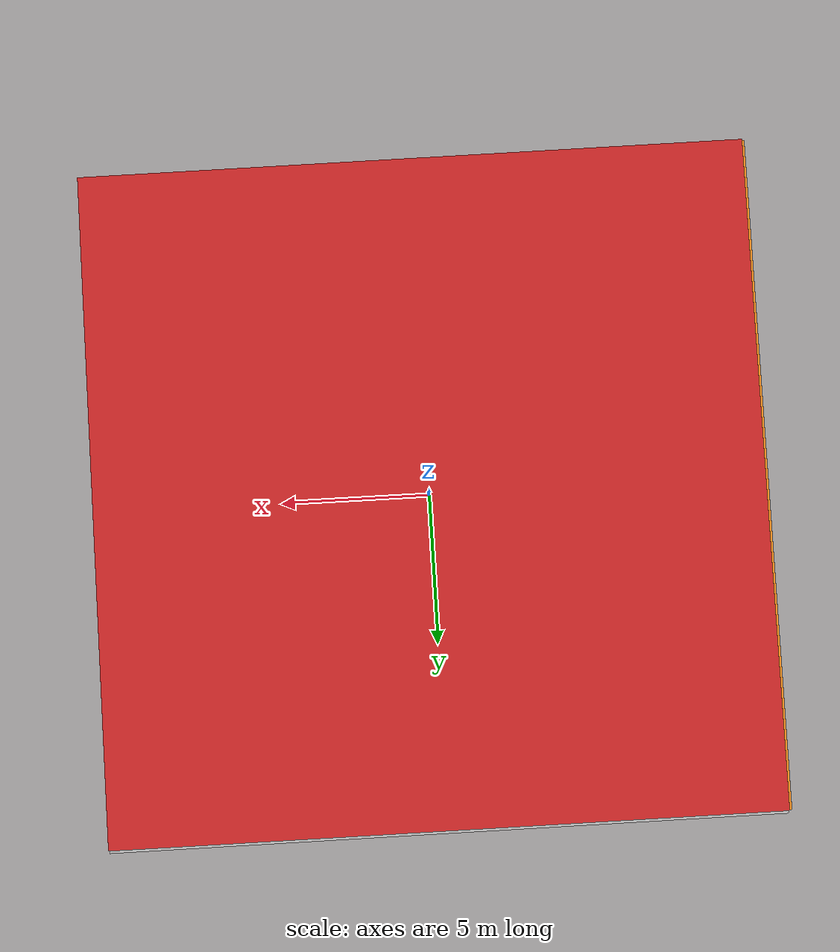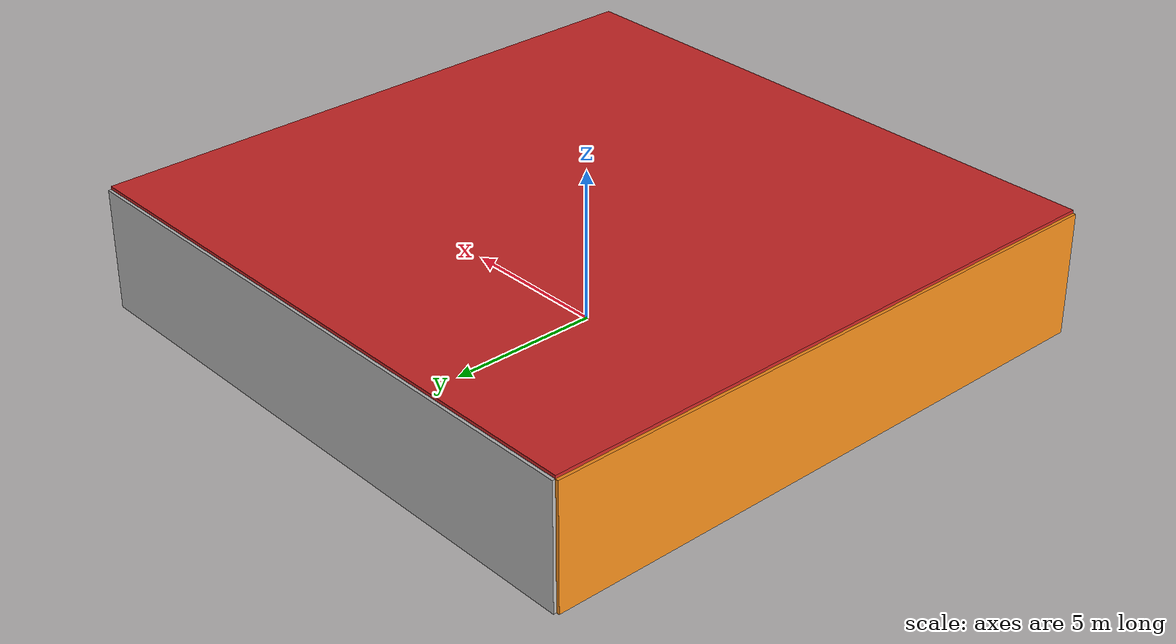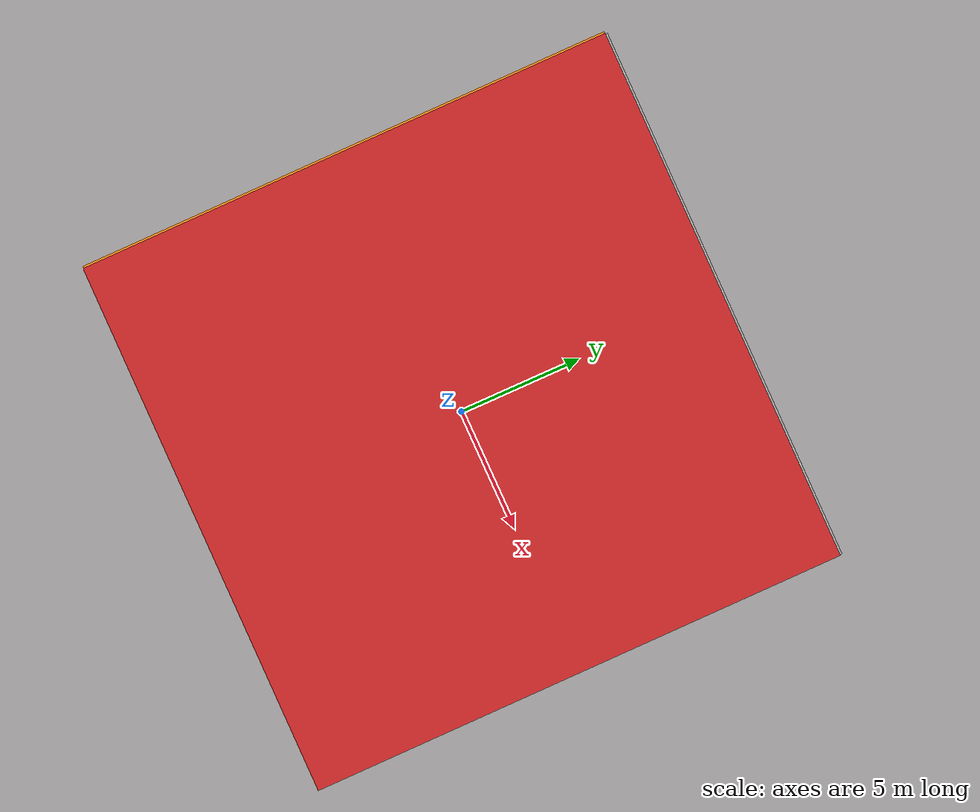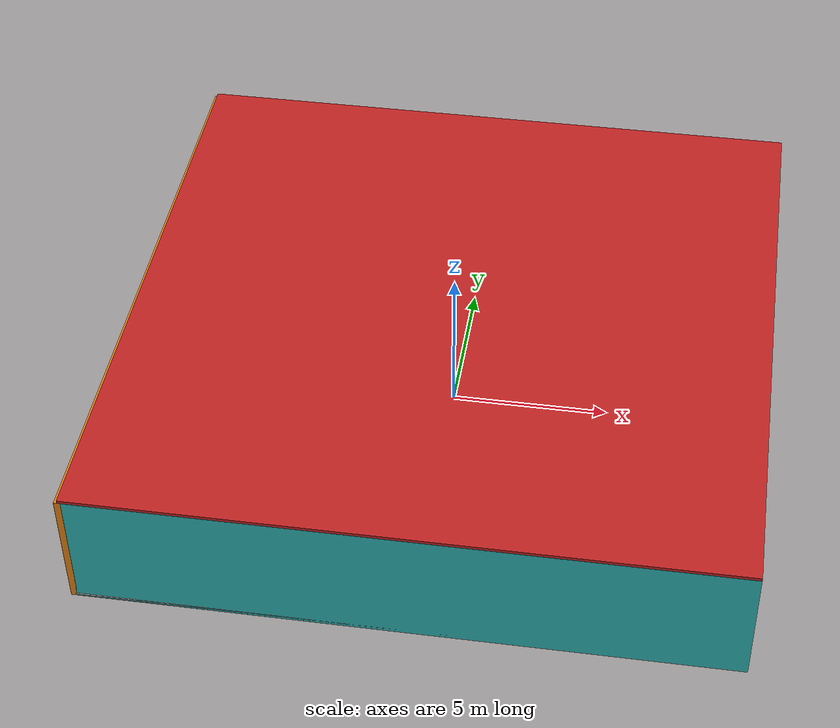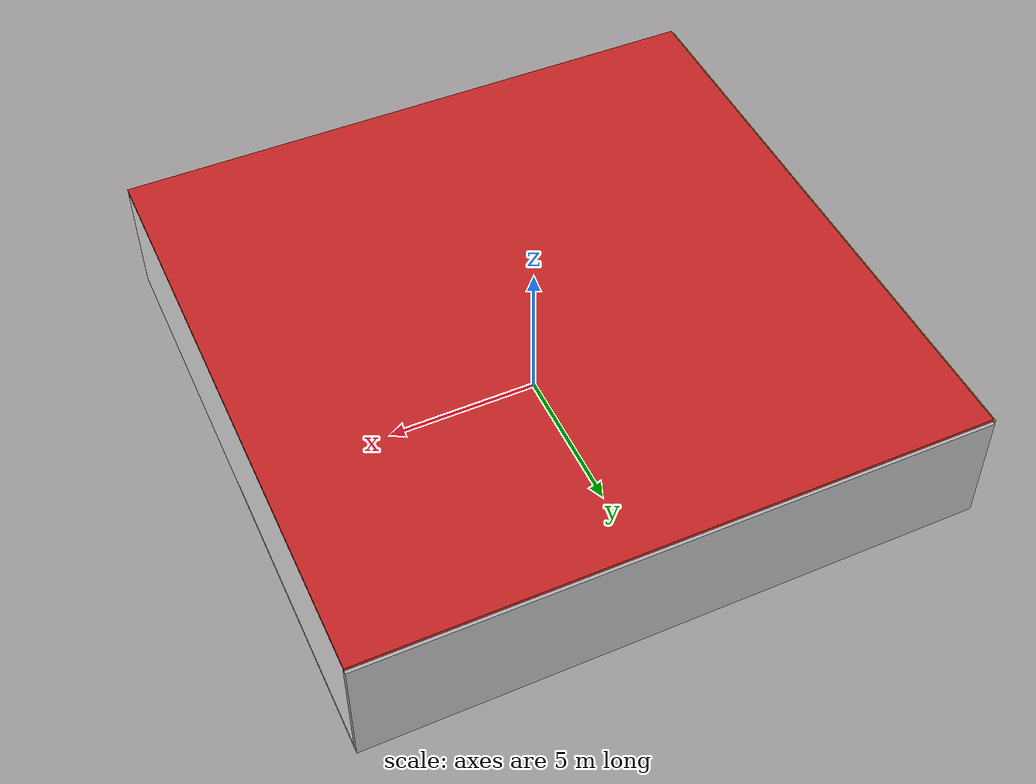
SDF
<sdf version="1.4">
 <world name="default">
  <physics type="ode">
   <max_step_size>0.001</max_step_size>
   <real_time_factor>1</real_time_factor>
   <real_time_update_rate>1000</real_time_update_rate>
   <gravity>0 0 -9.8</gravity>
  </physics>
  <scene><ambient>0.4 0.4 0.4 1</ambient><background>0.7 0.7 0.7 1</background><shadows>1</shadows></scene>
  <model name="Surrounding">
   <static>1</static>
   <link name="Ceiling">
    <collision name="Ceiling_Collision"><geometry><box><size>20 20 0.1</size></box></geometry></collision>
    <visual name="Ceiling_Visual">
     <geometry><box><size>20 20 0.1</size></box></geometry>
     <material>
      <script><uri>file://media/materials/scripts/gazebo.material</uri><name>Gazebo/Red</name></script>
     </material>
    </visual>
    <pose>0 0 4.05 0 0 0</pose>
   </link>
   <link name="Wall_South">
    <collision name="Wall_South_Collision">
     <geometry><box><size>20 0 4</size></box></geometry>
     <pose>0 0 2 0 -0 0</pose>
    </collision>
    <visual name="Wall_South_Visual">
     <pose>0 0 2 0 -0 0</pose>
     <geometry><box><size>20 0 4</size></box></geometry>
     <material>
      <script><uri>file://media/materials/scripts/gazebo.material</uri><name>Gazebo/TurquoiseGlow</name></script>
     </material>
    </visual>
    <velocity_decay><linear>0</linear><angular>0</angular></velocity_decay>
    <pose>0 -10 0 0 -0 0</pose>
   </link>
   <link name="Wall_East">
    <collision name="Wall_21_Collision">
     <geometry><box><size>20 0 4</size></box></geometry>
     <pose>0 0 2 0 -0 0</pose>
    </collision>
    <visual name="Wall_21_Visual">
     <pose>0 0 2 0 -0 0</pose>
     <geometry><box><size>20 0 4</size></box></geometry>
     <material>
      <script><uri>file://media/materials/scripts/gazebo.material</uri><name>Gazebo/WhiteGlow</name></script>
     </material>
    </visual>
    <velocity_decay><linear>0</linear><angular>0</angular></velocity_decay>
    <pose>10 0 0 0 -0 1.5708</pose>
   </link>
   <link name="Wall_North">
    <collision name="Wall_22_Collision">
     <geometry><box><size>20 0.2 4</size></box></geometry>
     <pose>0 0 2 0 -0 0</pose>
    </collision>
    <visual name="Wall_22_Visual">
     <pose>0 0 2 0 -0 0</pose>
     <geometry><box><size>20 0.2 4</size></box></geometry>
     <material>
      <script><uri>file://media/materials/scripts/gazebo.material</uri><name>Gazebo/LightOff</name></script>
     </material>
    </visual>
    <velocity_decay><linear>0</linear><angular>0</angular></velocity_decay>
    <pose>0 10 0 0 -0 0</pose>
   </link>
   <link name="Wall_West">
    <collision name="Wall_23_Collision">
     <geometry><box><size>20 0.2 4</size></box></geometry>
     <pose>0 0 2 0 -0 0</pose>
    </collision>
    <visual name="Wall_23_Visual">
     <pose>0 0 2 0 -0 0</pose>
     <geometry><box><size>20 0.2 4</size></box></geometry>
     <material>
      <script><uri>file://media/materials/scripts/gazebo.material</uri><name>Gazebo/Orange</name></script>
     </material>
    </visual>
    <velocity_decay><linear>0</linear><angular>0</angular></velocity_decay>
    <pose>-10 0 0 0 0 -1.5708</pose>
   </link>
   <link name="Ground_link">
    <collision name="collision">
     <pose>0 0 .05 0 -0 0</pose>
     <geometry><box><size>20 20 0.1</size></box></geometry>
    </collision>
    <visual name="visual">
     <pose>0 0 .05 0 -0 0</pose>
     <geometry><box><size>20 20 0.1</size></box></geometry>
     <material>
      <script><uri>file://media/materials/scripts/gazebo.material</uri><name>Gazebo/White</name></script>
     </material>
    </visual>
   </link>
   <static>1</static>
  </model>
  <spherical_coordinates>
   <surface_model>EARTH_WGS84</surface_model>
   <latitude_deg>0</latitude_deg>
   <longitude_deg>0</longitude_deg>
   <elevation>0</elevation>
   <heading_deg>0</heading_deg>
  </spherical_coordinates>
  <light name="lightball_0" type="diffuse">
   <diffuse>0.8 0.8 0.8 1</diffuse>
   <specular>0.2 0.2 0.2 1</specular>
   <attenuation>
    <range>100</range>
    <constant>0.7</constant>
    <linear>0.01</linear>
    <quadratic>0.001</quadratic>
   </attenuation>
   <direction>-0.5 0.1 -0.9</direction>
   <pose>-5.70194257359 -5.38011606235 3.43707999841 0 0 0</pose>
  </light>
  <light name="lightball_1" type="diffuse">
   <diffuse>0.8 0.8 0.8 1</diffuse>
   <specular>0.2 0.2 0.2 1</specular>
   <attenuation>
    <range>100</range>
    <constant>0.7</constant>
    <linear>0.01</linear>
    <quadratic>0.001</quadratic>
   </attenuation>
   <direction>-0.5 0.1 -0.9</direction>
   <pose>5.22605088935 -3.94184320944 2.59478528282 0 0 0</pose>
  </light>
  <light name="lightball_2" type="diffuse">
   <diffuse>0.8 0.8 0.8 1</diffuse>
   <specular>0.2 0.2 0.2 1</specular>
   <attenuation>
    <range>100</range>
    <constant>0.7</constant>
    <linear>0.01</linear>
    <quadratic>0.001</quadratic>
   </attenuation>
   <direction>-0.5 0.1 -0.9</direction>
   <pose>5.53509112766 1.99811432103 3.54936014437 0 0 0</pose>
  </light>
  <light name="lightball_3" type="diffuse">
   <diffuse>0.8 0.8 0.8 1</diffuse>
   <specular>0.2 0.2 0.2 1</specular>
   <attenuation>
    <range>100</range>
    <constant>0.7</constant>
    <linear>0.01</linear>
    <quadratic>0.001</quadratic>
   </attenuation>
   <direction>-0.5 0.1 -0.9</direction>
   <pose>-9.16756294037 2.3644456115 2.28544724377 0 0 0</pose>
  </light>
  <light name="lightball_4" type="diffuse">
   <diffuse>0.8 0.8 0.8 1</diffuse>
   <specular>0.2 0.2 0.2 1</specular>
   <attenuation>
    <range>100</range>
    <constant>0.7</constant>
    <linear>0.01</linear>
    <quadratic>0.001</quadratic>
   </attenuation>
   <direction>-0.5 0.1 -0.9</direction>
   <pose>-6.70856182621 5.45411398411 2.36741456241 0 0 0</pose>
  </light>
  <light name="lightball_5" type="diffuse">
   <diffuse>0.8 0.8 0.8 1</diffuse>
   <specular>0.2 0.2 0.2 1</specular>
   <attenuation>
    <range>100</range>
    <constant>0.7</constant>
    <linear>0.01</linear>
    <quadratic>0.001</quadratic>
   </attenuation>
   <direction>-0.5 0.1 -0.9</direction>
   <pose>-9.21792308526 2.98240423162 3.57548937493 0 0 0</pose>
  </light>
  <include><uri>model://table</uri><pose>-4.32400552985 -6.79439503633 0 0 0 0.732559622434</pose></include>
  <include>
   <uri>model://textured_shapes</uri>
   <pose>-4.54136681584 1.95195460591 0 0 0 2.02950836795</pose>
  </include>
  <include><uri>model://cabinet</uri><pose>7.09474013522 -4.96245434631 0 0 0 1.14186683292</pose></include>
  <include><uri>model://cabinet</uri><pose>7.64768867932 7.81217157993 0 0 0 2.24778188263</pose></include>
 </world>
</sdf>

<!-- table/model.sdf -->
<sdf version="1.5">
  <model name="table">
    <static>true</static>
    <link name="link">
      <collision name="surface">
        <pose>0 0 1.0 0 0 0</pose>
        <geometry>
          <box>
            <size>1.5 0.8 0.03</size>
          </box>
        </geometry>
        <surface>
          <friction>
            <ode>
              <mu>0.6</mu>
              <mu2>0.6</mu2>
            </ode>
          </friction>
        </surface>
      </collision>
      <visual name="visual1">
        <pose>0 0 1.0 0 0 0</pose>
        <geometry>
          <box>
            <size>1.5 0.8 0.03</size>
          </box>
        </geometry>
        <material>
          <script>
            <uri>model://media/materials/scripts/gazebo.material</uri>
            <name>Gazebo/Wood</name>
          </script>
        </material>
      </visual>
      <collision name="front_left_leg">
        <pose>0.68 0.38 0.5 0 0 0</pose>
        <geometry>
          <cylinder>
            <radius>0.02</radius>
            <length>1.0</length>
          </cylinder>
        </geometry>
      </collision>
      <visual name="front_left_leg">
        <pose>0.68 0.38 0.5 0 0 0</pose>
        <geometry>
          <cylinder>
            <radius>0.02</radius>
            <length>1.0</length>
          </cylinder>
        </geometry>
        <material>
          <script>
            <uri>model://media/materials/scripts/gazebo.material</uri>
            <name>Gazebo/Grey</name>
          </script>
        </material>
      </visual>
      <collision name="front_right_leg">
        <pose>0.68 -0.38 0.5 0 0 0</pose>
        <geometry>
          <cylinder>
            <radius>0.02</radius>
            <length>1.0</length>
          </cylinder>
        </geometry>
      </collision>
      <visual name="front_right_leg">
        <pose>0.68 -0.38 0.5 0 0 0</pose>
        <geometry>
          <cylinder>
            <radius>0.02</radius>
            <length>1.0</length>
          </cylinder>
        </geometry>
        <material>
          <script>
            <uri>model://media/materials/scripts/gazebo.material</uri>
            <name>Gazebo/Grey</name>
          </script>
        </material>
      </visual>
      <collision name="back_right_leg">
        <pose>-0.68 -0.38 0.5 0 0 0</pose>
        <geometry>
          <cylinder>
            <radius>0.02</radius>
            <length>1.0</length>
          </cylinder>
        </geometry>
      </collision>
      <visual name="back_right_leg">
        <pose>-0.68 -0.38 0.5 0 0 0</pose>
        <geometry>
          <cylinder>
            <radius>0.02</radius>
            <length>1.0</length>
          </cylinder>
        </geometry>
        <material>
          <script>
            <uri>model://media/materials/scripts/gazebo.material</uri>
            <name>Gazebo/Grey</name>
          </script>
        </material>
      </visual>
      <collision name="back_left_leg">
        <pose>-0.68 0.38 0.5 0 0 0</pose>
        <geometry>
          <cylinder>
            <radius>0.02</radius>
            <length>1.0</length>
          </cylinder>
        </geometry>
      </collision>
      <visual name="back_left_leg">
        <pose>-0.68 0.38 0.5 0 0 0</pose>
        <geometry>
          <cylinder>
            <radius>0.02</radius>
            <length>1.0</length>
          </cylinder>
        </geometry>
        <material>
          <script>
            <uri>model://media/materials/scripts/gazebo.material</uri>
            <name>Gazebo/Grey</name>
          </script>
        </material>
      </visual>
    </link>
  </model>
</sdf>

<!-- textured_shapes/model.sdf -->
<sdf version="1.6">
  <model name="textured_shapes">
    <pose>0 0 0.5 0 0 0</pose>
    <link name="box">
      <pose>0 -1.5 0 0 0 0</pose>
      <collision name="collision">
        <geometry>
          <box>
            <size>1 1 1</size>
          </box>
        </geometry>
      </collision>
      <visual name="visual">
        <geometry>
          <box>
            <size>1 1 1</size>
          </box>
        </geometry>
        <material>
          <script>
            <uri>model://../model_source/models/textured_shapes/materials/scripts</uri>
            <uri>model://../model_source/models/textured_shapes/materials/textures</uri>
            <name>TexturedShape/Squares</name>
          </script>
        </material>
      </visual>
    </link>
    <link name="sphere">
      <collision name="collision">
        <geometry>
          <sphere>
            <radius>0.5</radius>
          </sphere>
        </geometry>
      </collision>
      <visual name="visual">
        <geometry>
          <sphere>
            <radius>0.5</radius>
          </sphere>
        </geometry>
        <material>
          <script>
            <uri>model://../model_source/models/textured_shapes/materials/scripts</uri>
            <uri>model://../model_source/models/textured_shapes/materials/textures</uri>
            <name>TexturedShape/Squares</name>
          </script>
        </material>
      </visual>
    </link>
    <link name="cylinder">
      <pose>0 1.5 0 0 0 0</pose>
      <collision name="collision">
        <geometry>
          <cylinder>
            <radius>0.5</radius>
            <length>1</length>
          </cylinder>
        </geometry>
      </collision>
      <visual name="visual">
        <geometry>
          <cylinder>
            <radius>0.5</radius>
            <length>1</length>
          </cylinder>
        </geometry>
        <material>
          <script>
            <uri>model://../model_source/models/textured_shapes/materials/scripts</uri>
            <uri>model://../model_source/models/textured_shapes/materials/textures</uri>
            <name>TexturedShape/Squares</name>
          </script>
        </material>
      </visual>
    </link>
  </model>
</sdf>

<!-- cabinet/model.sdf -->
<sdf version="1.5">
  <model name="cabinet">
    <static>true</static>
    <link name="cabinet_bottom_plate">
      <inertial>
        <pose>0 0 -1 0 0 0</pose>
        <inertia>
          <ixx>2.050000</ixx>
          <ixy>0</ixy>
          <ixz>0</ixz>
          <iyy>2.050000</iyy>
          <iyz>0</iyz>
          <izz>2.050000</izz>
        </inertia>
        <mass>25.000000</mass>
      </inertial>
      <collision name="cabinet_bottom_plate_geom">
        <pose>0 0 0.010000 0 0 0</pose>
        <geometry>
          <box>
            <size>0.450000 0.450000 0.020000</size>
          </box>
        </geometry>
      </collision>
      <visual name="cabinet_bottom_plate_geom_visual">
        <pose>0 0 0.010000 0 0 0</pose>
        <geometry>
          <box>
            <size>0.450000 0.450000 0.020000</size>
          </box>
        </geometry>
        <material>
          <script>
            <uri>model://media/materials/scripts/gazebo.material</uri>
            <name>Gazebo/Wood</name>
          </script>
        </material>
      </visual>
      <collision name="cabinet_bottom_plate_geom_cabinet_back_plate">
        <pose>0.235000 0 0.510000 0 0 0</pose>
        <geometry>
          <box>
            <size>0.020000 0.450000 1.020000</size>
          </box>
        </geometry>
      </collision>
      <visual name="cabinet_bottom_plate_geom_cabinet_back_plate_visual">
        <pose>0.235000 0 0.510000 0 0 0</pose>
        <geometry>
          <box>
            <size>0.020000 0.450000 1.020000</size>
          </box>
        </geometry>
        <material>
          <script>
            <uri>model://media/materials/scripts/gazebo.material</uri>
            <name>Gazebo/Wood</name>
          </script>
        </material>
      </visual>
      <collision name="cabinet_bottom_plate_geom_cabinet_left_plate">
        <pose>0 0.235000 0.510000 0 0 0</pose>
        <geometry>
          <box>
            <size>0.450000 0.020000 1.020000</size>
          </box>
        </geometry>
      </collision>
      <visual name="cabinet_bottom_plate_geom_cabinet_left_plate_visual">
        <pose>0 0.235000 0.510000 0 0 0</pose>
        <geometry>
          <box>
            <size>0.450000 0.020000 1.020000</size>
          </box>
        </geometry>
        <material>
          <script>
            <uri>model://media/materials/scripts/gazebo.material</uri>
            <name>Gazebo/Wood</name>
          </script>
        </material>
      </visual>
      <collision name="cabinet_bottom_plate_geom_cabinet_middle_plate">
        <pose>0 0 0.510000 0 0 0</pose>
        <geometry>
          <box>
            <size>0.450000 0.450000 0.020000</size>
          </box>
        </geometry>
      </collision>
      <visual name="cabinet_bottom_plate_geom_cabinet_middle_plate_visual">
        <pose>0 0 0.510000 0 0 0</pose>
        <geometry>
          <box>
            <size>0.450000 0.450000 0.020000</size>
          </box>
        </geometry>
        <material>
          <script>
            <uri>model://media/materials/scripts/gazebo.material</uri>
            <name>Gazebo/Wood</name>
          </script>
        </material>
      </visual>
      <collision name="cabinet_bottom_plate_geom_cabinet_right_plate">
        <pose>0 -0.235000 0.510000 0 0 0</pose>
        <geometry>
          <box>
            <size>0.450000 0.020000 1.020000</size>
          </box>
        </geometry>
      </collision>
      <visual name="cabinet_bottom_plate_geom_cabinet_right_plate_visual">
        <pose>0 -0.235000 0.510000 0 0 0</pose>
        <geometry>
          <box>
            <size>0.450000 0.020000 1.020000</size>
          </box>
        </geometry>
        <material>
          <script>
            <uri>model://media/materials/scripts/gazebo.material</uri>
            <name>Gazebo/Wood</name>
          </script>
        </material>
      </visual>
      <collision name="cabinet_bottom_plate_geom_cabinet_top_plate">
        <pose>0 0 1.010000 0 0 0</pose>
        <geometry>
          <box>
            <size>0.450000 0.450000 0.020000</size>
          </box>
        </geometry>
      </collision>
      <visual name="cabinet_bottom_plate_geom_cabinet_top_plate_visual">
        <pose>0 0 1.010000 0 0 0</pose>
        <geometry>
          <box>
            <size>0.450000 0.450000 0.020000</size>
          </box>
        </geometry>
        <material>
          <script>
            <uri>model://media/materials/scripts/gazebo.material</uri>
            <name>Gazebo/Wood</name>
          </script>
        </material>
      </visual>
    </link>
  </model>
</sdf>
